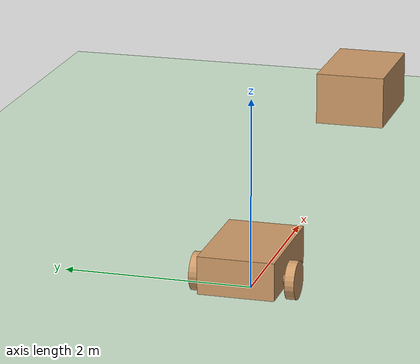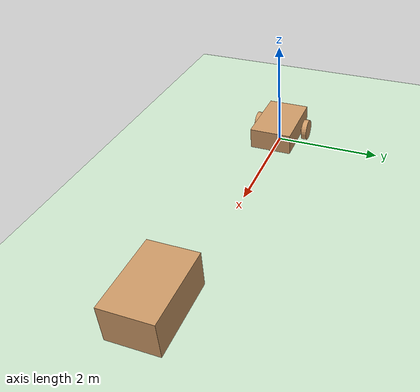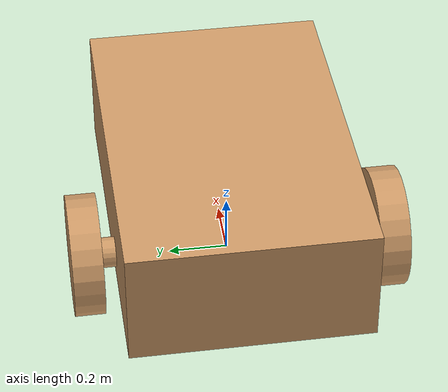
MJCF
<?xml version="1.0" encoding="UTF-8"?>

<mujoco model="bot_sym">
	<compiler angle="degree" coordinate="local" inertiafromgeom="true"/>
	<option integrator="RK4" timestep="0.01"/>
	<custom>
		<numeric name="init_qpos" data="0.0 0.0 0.1 1.0 0.0 0.0 0.0 0.0 1.0 0.0 -1.0 0.0 -1.0 0.0 1.0"/>
	</custom>
	<default>
		<joint armature="1" damping="1" limited="true"/>
		<geom conaffinity="0" condim="3" density="5.0" friction="1 0.5 0.5" margin="0.01" rgba="0.8 0.6 0.4 1"/>
	</default>
	<asset>
		<texture builtin="gradient" height="100" rgb1="1 1 1" rgb2="0 0 0" type="skybox" width="100"/>
		<texture builtin="flat" height="1278" mark="cross" markrgb="1 1 1" name="texgeom" random="0.01" rgb1="0.8 0.6 0.4" rgb2="0.8 0.6 0.4" type="cube" width="127"/>
		<texture builtin="checker" height="100" name="texplane" rgb1="0 0 0" rgb2="0.8 0.8 0.8" type="2d" width="100"/>
		<material name="MatPlane" reflectance="0.5" shininess="1" specular="1" texrepeat="60 60" texture="texplane"/>
		<material name="geom" texture="texgeom" texuniform="true"/>
	</asset>
	<worldbody>
		<light cutoff="100" diffuse="1 1 1" dir="0 0 -1.3" directional="true" exponent="1" pos="0 0 1.3" specular="0.1 0.1 0.1"/>
		<geom conaffinity="1" condim="3" material="MatPlane" name="floor" pos="0 0 0" rgba="0.8 0.9 0.8 1" size="40 40 40" type="plane"/>

        <body name="block" pos="5 0 0.75">
			<geom name="torso_geom2" pos="0 0 0" size="0.6 0.4 0.3" type="box"/>
			<joint armature="0" damping="0" limited="false" margin="0.01" name="root2" pos="0 0 0" type="free"/>
		</body>

		<body name="torso" >
			<camera mode="trackcom" name="track" pos="0 -3 0.3" xyaxes="1 0 0 0 0 2"/>
			<geom name="torso_geom" pos="0 0 0.3" size="0.6 0.4 0.2" type="box"/>
			<joint armature="0" damping="0" limited="false"  name="root" type="free"/>
			<body name="front_connect">
				<geom fromto="0.5 0 0.1 0.5 0 0.05" name="front_geom_connect" size="0.05" type="capsule"/>
				<body name="front_ball" pos="0.5 0 0.05" >
					<geom name="ball" size="0.05" type="sphere"/>
				</body>
			</body>

			<body name="right_shaft">
				<geom fromto="-0.2 0.5 0.2 -0.2 0.3 0.2" name="right_geom_shaft" size="0.05" type="capsule"/>
				<body name="wheel_right">
					<geom name="wheel_right_geom" pos="-0.2 0.5 0.2"  size="0.2 0.05" type="cylinder" euler = '90 0 0'/>
				</body>
			</body>

			<body name="left_shaft">
				<geom fromto="-0.2 -0.5 0.2 -0.2 -0.3 0.2" name="left_geom_shaft" size="0.05" type="capsule"/>
				<body name="wheel_left" >
					<geom name="wheel_left_geom" pos="-0.2 -0.5 0.2"  size="0.2 0.05" type="cylinder" euler = '90 0 0'/>
				</body>
			</body>
		</body>

	</worldbody>
	<actuator>
		<position ctrllimited="true" ctrlrange="-1.0 1.0" gear = "10" joint = "root2"/>

	</actuator>
</mujoco>
